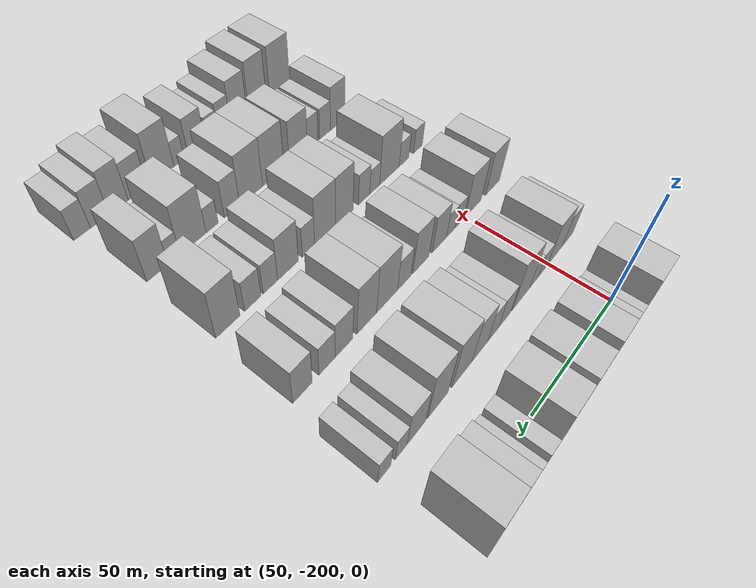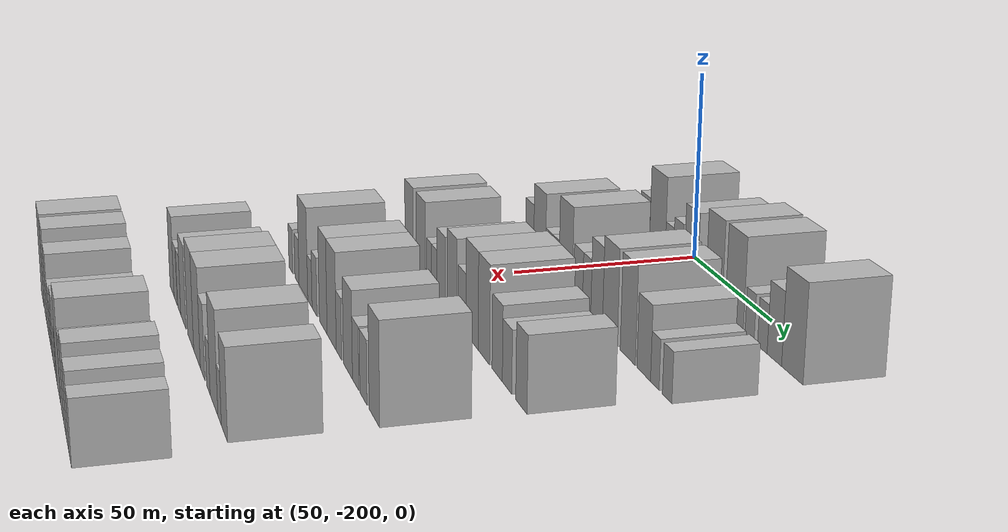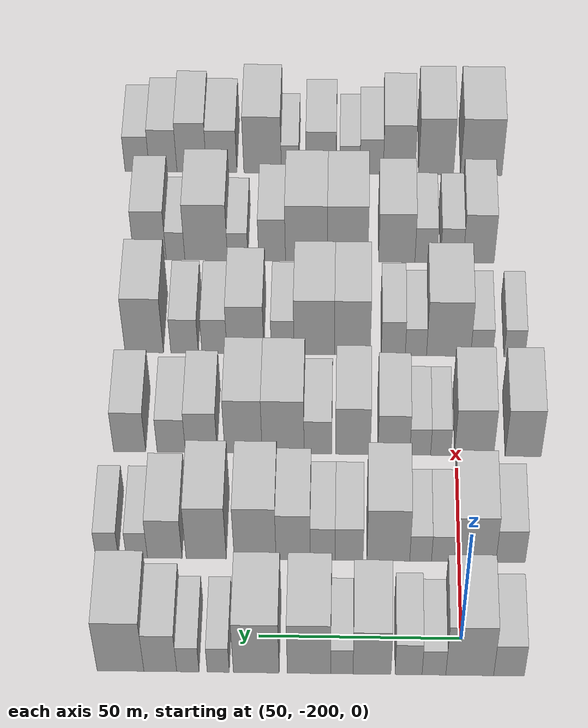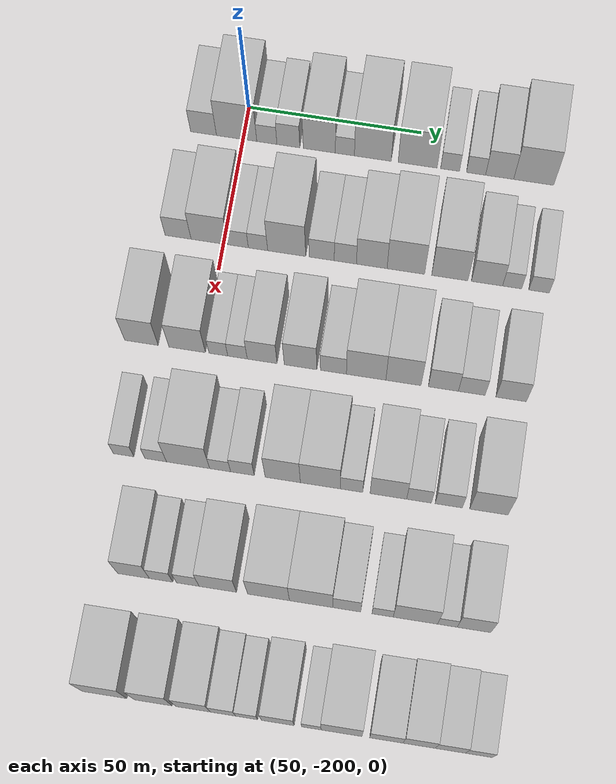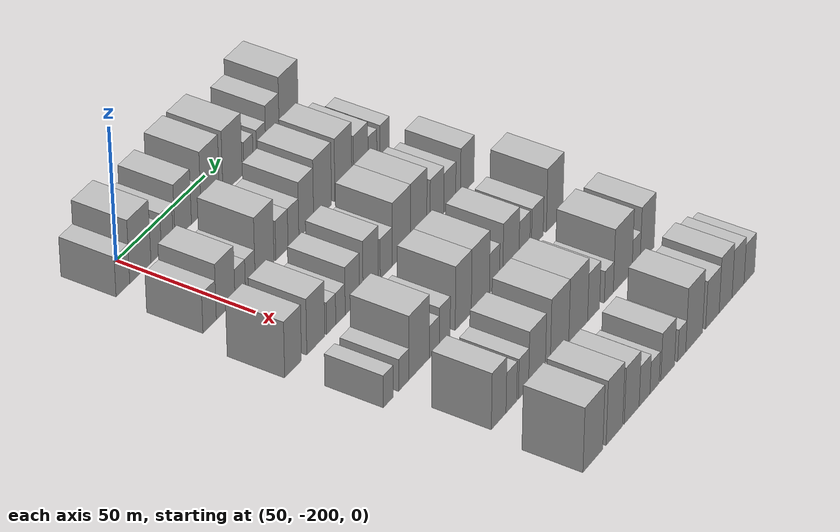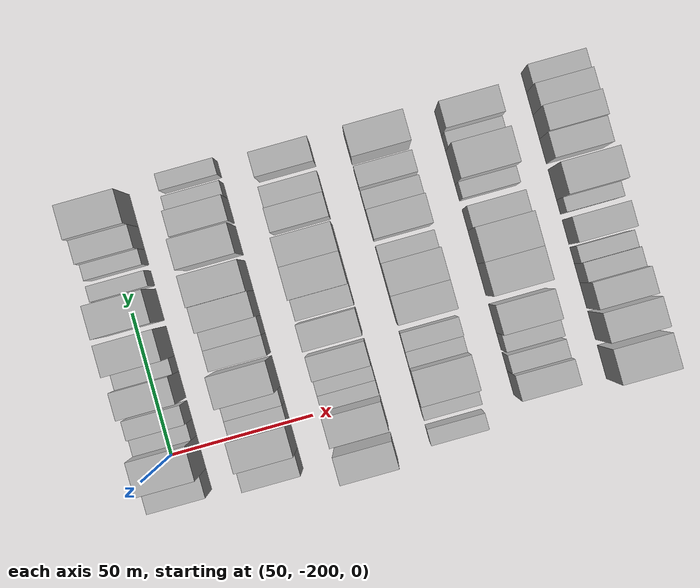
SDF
<sdf version="1.6">
 <world name="default">
  <model name="building_36">
   <static>1</static>
   <pose>50.0000 -211.4095 0 0.000000 0.000000 0.000000</pose>
   <link name="link">
    <pose>0 0 7.50 0 0 0</pose>
    <collision name="collision"><geometry><box><size>20.0000 7.4997 15.0000</size></box></geometry></collision>
    <visual name="visual">
     <cast_shadows>0</cast_shadows>
     <geometry><box><size>20.0000 7.4997 15.0000</size></box></geometry>
     <material>
      <script>
       <uri>model://HANNAS_wall/materials/scripts</uri>
       <uri>model://HANNAS_wall/materials/textures</uri>
       <name>vrc/HANNAS_wall</name>
      </script>
     </material>
    </visual>
   </link>
  </model>
  <model name="building_37">
   <static>1</static>
   <pose>50.0000 -201.8134 0 0.000000 0.000000 0.000000</pose>
   <link name="link">
    <pose>0 0 12.00 0 0 0</pose>
    <collision name="collision"><geometry><box><size>20.0000 11.6925 24.0000</size></box></geometry></collision>
    <visual name="visual">
     <cast_shadows>0</cast_shadows>
     <geometry><box><size>20.0000 11.6925 24.0000</size></box></geometry>
     <material>
      <script>
       <uri>model://HANNAS_wall/materials/scripts</uri>
       <uri>model://HANNAS_wall/materials/textures</uri>
       <name>vrc/HANNAS_wall</name>
      </script>
     </material>
    </visual>
   </link>
  </model>
  <model name="building_38">
   <static>1</static>
   <pose>50.0000 -193.0613 0 0.000000 0.000000 0.000000</pose>
   <link name="link">
    <pose>0 0 6.00 0 0 0</pose>
    <collision name="collision"><geometry><box><size>20.0000 5.8116 12.0000</size></box></geometry></collision>
    <visual name="visual">
     <cast_shadows>0</cast_shadows>
     <geometry><box><size>20.0000 5.8116 12.0000</size></box></geometry>
     <material>
      <script>
       <uri>model://HANNAS_wall/materials/scripts</uri>
       <uri>model://HANNAS_wall/materials/textures</uri>
       <name>vrc/HANNAS_wall</name>
      </script>
     </material>
    </visual>
   </link>
  </model>
  <model name="building_39">
   <static>1</static>
   <pose>50.0000 -186.8491 0 0.000000 0.000000 0.000000</pose>
   <link name="link">
    <pose>0 0 7.50 0 0 0</pose>
    <collision name="collision"><geometry><box><size>20.0000 6.6129 15.0000</size></box></geometry></collision>
    <visual name="visual">
     <cast_shadows>0</cast_shadows>
     <geometry><box><size>20.0000 6.6129 15.0000</size></box></geometry>
     <material>
      <script>
       <uri>model://HANNAS_wall/materials/scripts</uri>
       <uri>model://HANNAS_wall/materials/textures</uri>
       <name>vrc/HANNAS_wall</name>
      </script>
     </material>
    </visual>
   </link>
  </model>
  <model name="building_40">
   <static>1</static>
   <pose>50.0000 -177.8994 0 0.000000 0.000000 0.000000</pose>
   <link name="link">
    <pose>0 0 10.50 0 0 0</pose>
    <collision name="collision"><geometry><box><size>20.0000 9.2864 21.0000</size></box></geometry></collision>
    <visual name="visual">
     <cast_shadows>0</cast_shadows>
     <geometry><box><size>20.0000 9.2864 21.0000</size></box></geometry>
     <material>
      <script>
       <uri>model://HANNAS_wall/materials/scripts</uri>
       <uri>model://HANNAS_wall/materials/textures</uri>
       <name>vrc/HANNAS_wall</name>
      </script>
     </material>
    </visual>
   </link>
  </model>
  <model name="building_41">
   <static>1</static>
   <pose>50.0000 -170.5214 0 0.000000 0.000000 0.000000</pose>
   <link name="link">
    <pose>0 0 6.00 0 0 0</pose>
    <collision name="collision"><geometry><box><size>20.0000 5.4694 12.0000</size></box></geometry></collision>
    <visual name="visual">
     <cast_shadows>0</cast_shadows>
     <geometry><box><size>20.0000 5.4694 12.0000</size></box></geometry>
     <material>
      <script>
       <uri>model://HANNAS_wall/materials/scripts</uri>
       <uri>model://HANNAS_wall/materials/textures</uri>
       <name>vrc/HANNAS_wall</name>
      </script>
     </material>
    </visual>
   </link>
  </model>
  <model name="building_42">
   <static>1</static>
   <pose>50.0000 -162.4964 0 0.000000 0.000000 0.000000</pose>
   <link name="link">
    <pose>0 0 12.00 0 0 0</pose>
    <collision name="collision"><geometry><box><size>20.0000 10.5806 24.0000</size></box></geometry></collision>
    <visual name="visual">
     <cast_shadows>0</cast_shadows>
     <geometry><box><size>20.0000 10.5806 24.0000</size></box></geometry>
     <material>
      <script>
       <uri>model://HANNAS_wall/materials/scripts</uri>
       <uri>model://HANNAS_wall/materials/textures</uri>
       <name>vrc/HANNAS_wall</name>
      </script>
     </material>
    </visual>
   </link>
  </model>
  <model name="building_43">
   <static>1</static>
   <pose>50.0000 -149.6053 0 0.000000 0.000000 0.000000</pose>
   <link name="link">
    <pose>0 0 12.00 0 0 0</pose>
    <collision name="collision"><geometry><box><size>20.0000 11.2016 24.0000</size></box></geometry></collision>
    <visual name="visual">
     <cast_shadows>0</cast_shadows>
     <geometry><box><size>20.0000 11.2016 24.0000</size></box></geometry>
     <material>
      <script>
       <uri>model://HANNAS_wall/materials/scripts</uri>
       <uri>model://HANNAS_wall/materials/textures</uri>
       <name>vrc/HANNAS_wall</name>
      </script>
     </material>
    </visual>
   </link>
  </model>
  <model name="building_44">
   <static>1</static>
   <pose>50.0000 -140.2981 0 0.000000 0.000000 0.000000</pose>
   <link name="link">
    <pose>0 0 6.00 0 0 0</pose>
    <collision name="collision"><geometry><box><size>20.0000 5.4127 12.0000</size></box></geometry></collision>
    <visual name="visual">
     <cast_shadows>0</cast_shadows>
     <geometry><box><size>20.0000 5.4127 12.0000</size></box></geometry>
     <material>
      <script>
       <uri>model://HANNAS_wall/materials/scripts</uri>
       <uri>model://HANNAS_wall/materials/textures</uri>
       <name>vrc/HANNAS_wall</name>
      </script>
     </material>
    </visual>
   </link>
  </model>
  <model name="building_45">
   <static>1</static>
   <pose>50.0000 -132.8563 0 0.000000 0.000000 0.000000</pose>
   <link name="link">
    <pose>0 0 6.00 0 0 0</pose>
    <collision name="collision"><geometry><box><size>20.0000 5.4709 12.0000</size></box></geometry></collision>
    <visual name="visual">
     <cast_shadows>0</cast_shadows>
     <geometry><box><size>20.0000 5.4709 12.0000</size></box></geometry>
     <material>
      <script>
       <uri>model://HANNAS_wall/materials/scripts</uri>
       <uri>model://HANNAS_wall/materials/textures</uri>
       <name>vrc/HANNAS_wall</name>
      </script>
     </material>
    </visual>
   </link>
  </model>
  <model name="building_46">
   <static>1</static>
   <pose>50.0000 -126.0990 0 0.000000 0.000000 0.000000</pose>
   <link name="link">
    <pose>0 0 9.00 0 0 0</pose>
    <collision name="collision"><geometry><box><size>20.0000 8.0437 18.0000</size></box></geometry></collision>
    <visual name="visual">
     <cast_shadows>0</cast_shadows>
     <geometry><box><size>20.0000 8.0437 18.0000</size></box></geometry>
     <material>
      <script>
       <uri>model://HANNAS_wall/materials/scripts</uri>
       <uri>model://HANNAS_wall/materials/textures</uri>
       <name>vrc/HANNAS_wall</name>
      </script>
     </material>
    </visual>
   </link>
  </model>
  <model name="building_47">
   <static>1</static>
   <pose>50.0000 -116.3483 0 0.000000 0.000000 0.000000</pose>
   <link name="link">
    <pose>0 0 12.00 0 0 0</pose>
    <collision name="collision"><geometry><box><size>20.0000 11.4578 24.0000</size></box></geometry></collision>
    <visual name="visual">
     <cast_shadows>0</cast_shadows>
     <geometry><box><size>20.0000 11.4578 24.0000</size></box></geometry>
     <material>
      <script>
       <uri>model://HANNAS_wall/materials/scripts</uri>
       <uri>model://HANNAS_wall/materials/textures</uri>
       <name>vrc/HANNAS_wall</name>
      </script>
     </material>
    </visual>
   </link>
  </model>
  <model name="building_151">
   <static>1</static>
   <pose>82.0000 -212.9503 0 0.000000 0.000000 0.000000</pose>
   <link name="link">
    <pose>0 0 7.50 0 0 0</pose>
    <collision name="collision"><geometry><box><size>20.0000 7.4075 15.0000</size></box></geometry></collision>
    <visual name="visual">
     <cast_shadows>0</cast_shadows>
     <geometry><box><size>20.0000 7.4075 15.0000</size></box></geometry>
     <material>
      <script>
       <uri>model://HANNAS_wall/materials/scripts</uri>
       <uri>model://HANNAS_wall/materials/textures</uri>
       <name>vrc/HANNAS_wall</name>
      </script>
     </material>
    </visual>
   </link>
  </model>
  <model name="building_152">
   <static>1</static>
   <pose>82.0000 -204.0223 0 0.000000 0.000000 0.000000</pose>
   <link name="link">
    <pose>0 0 10.50 0 0 0</pose>
    <collision name="collision"><geometry><box><size>20.0000 10.4486 21.0000</size></box></geometry></collision>
    <visual name="visual">
     <cast_shadows>0</cast_shadows>
     <geometry><box><size>20.0000 10.4486 21.0000</size></box></geometry>
     <material>
      <script>
       <uri>model://HANNAS_wall/materials/scripts</uri>
       <uri>model://HANNAS_wall/materials/textures</uri>
       <name>vrc/HANNAS_wall</name>
      </script>
     </material>
    </visual>
   </link>
  </model>
  <model name="building_153">
   <static>1</static>
   <pose>82.0000 -195.8645 0 0.000000 0.000000 0.000000</pose>
   <link name="link">
    <pose>0 0 6.00 0 0 0</pose>
    <collision name="collision"><geometry><box><size>20.0000 5.8670 12.0000</size></box></geometry></collision>
    <visual name="visual">
     <cast_shadows>0</cast_shadows>
     <geometry><box><size>20.0000 5.8670 12.0000</size></box></geometry>
     <material>
      <script>
       <uri>model://HANNAS_wall/materials/scripts</uri>
       <uri>model://HANNAS_wall/materials/textures</uri>
       <name>vrc/HANNAS_wall</name>
      </script>
     </material>
    </visual>
   </link>
  </model>
  <model name="building_154">
   <static>1</static>
   <pose>82.0000 -190.1782 0 0.000000 0.000000 0.000000</pose>
   <link name="link">
    <pose>0 0 6.00 0 0 0</pose>
    <collision name="collision"><geometry><box><size>20.0000 5.5055 12.0000</size></box></geometry></collision>
    <visual name="visual">
     <cast_shadows>0</cast_shadows>
     <geometry><box><size>20.0000 5.5055 12.0000</size></box></geometry>
     <material>
      <script>
       <uri>model://HANNAS_wall/materials/scripts</uri>
       <uri>model://HANNAS_wall/materials/textures</uri>
       <name>vrc/HANNAS_wall</name>
      </script>
     </material>
    </visual>
   </link>
  </model>
  <model name="building_155">
   <static>1</static>
   <pose>82.0000 -182.0182 0 0.000000 0.000000 0.000000</pose>
   <link name="link">
    <pose>0 0 12.00 0 0 0</pose>
    <collision name="collision"><geometry><box><size>20.0000 10.8144 24.0000</size></box></geometry></collision>
    <visual name="visual">
     <cast_shadows>0</cast_shadows>
     <geometry><box><size>20.0000 10.8144 24.0000</size></box></geometry>
     <material>
      <script>
       <uri>model://HANNAS_wall/materials/scripts</uri>
       <uri>model://HANNAS_wall/materials/textures</uri>
       <name>vrc/HANNAS_wall</name>
      </script>
     </material>
    </visual>
   </link>
  </model>
  <model name="building_156">
   <static>1</static>
   <pose>82.0000 -172.0646 0 0.000000 0.000000 0.000000</pose>
   <link name="link">
    <pose>0 0 7.50 0 0 0</pose>
    <collision name="collision"><geometry><box><size>20.0000 7.0930 15.0000</size></box></geometry></collision>
    <visual name="visual">
     <cast_shadows>0</cast_shadows>
     <geometry><box><size>20.0000 7.0930 15.0000</size></box></geometry>
     <material>
      <script>
       <uri>model://HANNAS_wall/materials/scripts</uri>
       <uri>model://HANNAS_wall/materials/textures</uri>
       <name>vrc/HANNAS_wall</name>
      </script>
     </material>
    </visual>
   </link>
  </model>
  <model name="building_157">
   <static>1</static>
   <pose>82.0000 -165.3801 0 0.000000 0.000000 0.000000</pose>
   <link name="link">
    <pose>0 0 7.50 0 0 0</pose>
    <collision name="collision"><geometry><box><size>20.0000 6.2759 15.0000</size></box></geometry></collision>
    <visual name="visual">
     <cast_shadows>0</cast_shadows>
     <geometry><box><size>20.0000 6.2759 15.0000</size></box></geometry>
     <material>
      <script>
       <uri>model://HANNAS_wall/materials/scripts</uri>
       <uri>model://HANNAS_wall/materials/textures</uri>
       <name>vrc/HANNAS_wall</name>
      </script>
     </material>
    </visual>
   </link>
  </model>
  <model name="building_158">
   <static>1</static>
   <pose>82.0000 -157.9136 0 0.000000 0.000000 0.000000</pose>
   <link name="link">
    <pose>0 0 10.50 0 0 0</pose>
    <collision name="collision"><geometry><box><size>20.0000 8.6572 21.0000</size></box></geometry></collision>
    <visual name="visual">
     <cast_shadows>0</cast_shadows>
     <geometry><box><size>20.0000 8.6572 21.0000</size></box></geometry>
     <material>
      <script>
       <uri>model://HANNAS_wall/materials/scripts</uri>
       <uri>model://HANNAS_wall/materials/textures</uri>
       <name>vrc/HANNAS_wall</name>
      </script>
     </material>
    </visual>
   </link>
  </model>
  <model name="building_159">
   <static>1</static>
   <pose>82.0000 -148.2893 0 0.000000 0.000000 0.000000</pose>
   <link name="link">
    <pose>0 0 12.00 0 0 0</pose>
    <collision name="collision"><geometry><box><size>20.0000 10.5914 24.0000</size></box></geometry></collision>
    <visual name="visual">
     <cast_shadows>0</cast_shadows>
     <geometry><box><size>20.0000 10.5914 24.0000</size></box></geometry>
     <material>
      <script>
       <uri>model://HANNAS_wall/materials/scripts</uri>
       <uri>model://HANNAS_wall/materials/textures</uri>
       <name>vrc/HANNAS_wall</name>
      </script>
     </material>
    </visual>
   </link>
  </model>
  <model name="building_160">
   <static>1</static>
   <pose>82.0000 -135.8942 0 0.000000 0.000000 0.000000</pose>
   <link name="link">
    <pose>0 0 12.00 0 0 0</pose>
    <collision name="collision"><geometry><box><size>20.0000 10.1988 24.0000</size></box></geometry></collision>
    <visual name="visual">
     <cast_shadows>0</cast_shadows>
     <geometry><box><size>20.0000 10.1988 24.0000</size></box></geometry>
     <material>
      <script>
       <uri>model://HANNAS_wall/materials/scripts</uri>
       <uri>model://HANNAS_wall/materials/textures</uri>
       <name>vrc/HANNAS_wall</name>
      </script>
     </material>
    </visual>
   </link>
  </model>
  <model name="building_161">
   <static>1</static>
   <pose>82.0000 -125.4006 0 0.000000 0.000000 0.000000</pose>
   <link name="link">
    <pose>0 0 9.00 0 0 0</pose>
    <collision name="collision"><geometry><box><size>20.0000 8.7882 18.0000</size></box></geometry></collision>
    <visual name="visual">
     <cast_shadows>0</cast_shadows>
     <geometry><box><size>20.0000 8.7882 18.0000</size></box></geometry>
     <material>
      <script>
       <uri>model://HANNAS_wall/materials/scripts</uri>
       <uri>model://HANNAS_wall/materials/textures</uri>
       <name>vrc/HANNAS_wall</name>
      </script>
     </material>
    </visual>
   </link>
  </model>
  <model name="building_162">
   <static>1</static>
   <pose>82.0000 -118.3211 0 0.000000 0.000000 0.000000</pose>
   <link name="link">
    <pose>0 0 6.00 0 0 0</pose>
    <collision name="collision"><geometry><box><size>20.0000 5.3708 12.0000</size></box></geometry></collision>
    <visual name="visual">
     <cast_shadows>0</cast_shadows>
     <geometry><box><size>20.0000 5.3708 12.0000</size></box></geometry>
     <material>
      <script>
       <uri>model://HANNAS_wall/materials/scripts</uri>
       <uri>model://HANNAS_wall/materials/textures</uri>
       <name>vrc/HANNAS_wall</name>
      </script>
     </material>
    </visual>
   </link>
  </model>
  <model name="building_163">
   <static>1</static>
   <pose>82.0000 -110.7547 0 0.000000 0.000000 0.000000</pose>
   <link name="link">
    <pose>0 0 6.00 0 0 0</pose>
    <collision name="collision"><geometry><box><size>20.0000 5.7620 12.0000</size></box></geometry></collision>
    <visual name="visual">
     <cast_shadows>0</cast_shadows>
     <geometry><box><size>20.0000 5.7620 12.0000</size></box></geometry>
     <material>
      <script>
       <uri>model://HANNAS_wall/materials/scripts</uri>
       <uri>model://HANNAS_wall/materials/textures</uri>
       <name>vrc/HANNAS_wall</name>
      </script>
     </material>
    </visual>
   </link>
  </model>
  <model name="building_274">
   <static>1</static>
   <pose>114.0000 -217.3961 0 0.000000 0.000000 0.000000</pose>
   <link name="link">
    <pose>0 0 10.50 0 0 0</pose>
    <collision name="collision"><geometry><box><size>20.0000 9.4086 21.0000</size></box></geometry></collision>
    <visual name="visual">
     <cast_shadows>0</cast_shadows>
     <geometry><box><size>20.0000 9.4086 21.0000</size></box></geometry>
     <material>
      <script>
       <uri>model://HANNAS_wall/materials/scripts</uri>
       <uri>model://HANNAS_wall/materials/textures</uri>
       <name>vrc/HANNAS_wall</name>
      </script>
     </material>
    </visual>
   </link>
  </model>
  <model name="building_275">
   <static>1</static>
   <pose>114.0000 -204.5682 0 0.000000 0.000000 0.000000</pose>
   <link name="link">
    <pose>0 0 10.50 0 0 0</pose>
    <collision name="collision"><geometry><box><size>20.0000 10.2472 21.0000</size></box></geometry></collision>
    <visual name="visual">
     <cast_shadows>0</cast_shadows>
     <geometry><box><size>20.0000 10.2472 21.0000</size></box></geometry>
     <material>
      <script>
       <uri>model://HANNAS_wall/materials/scripts</uri>
       <uri>model://HANNAS_wall/materials/textures</uri>
       <name>vrc/HANNAS_wall</name>
      </script>
     </material>
    </visual>
   </link>
  </model>
  <model name="building_276">
   <static>1</static>
   <pose>114.0000 -195.8156 0 0.000000 0.000000 0.000000</pose>
   <link name="link">
    <pose>0 0 6.00 0 0 0</pose>
    <collision name="collision"><geometry><box><size>20.0000 5.2579 12.0000</size></box></geometry></collision>
    <visual name="visual">
     <cast_shadows>0</cast_shadows>
     <geometry><box><size>20.0000 5.2579 12.0000</size></box></geometry>
     <material>
      <script>
       <uri>model://HANNAS_wall/materials/scripts</uri>
       <uri>model://HANNAS_wall/materials/textures</uri>
       <name>vrc/HANNAS_wall</name>
      </script>
     </material>
    </visual>
   </link>
  </model>
  <model name="building_277">
   <static>1</static>
   <pose>114.0000 -190.4619 0 0.000000 0.000000 0.000000</pose>
   <link name="link">
    <pose>0 0 6.00 0 0 0</pose>
    <collision name="collision"><geometry><box><size>20.0000 5.4493 12.0000</size></box></geometry></collision>
    <visual name="visual">
     <cast_shadows>0</cast_shadows>
     <geometry><box><size>20.0000 5.4493 12.0000</size></box></geometry>
     <material>
      <script>
       <uri>model://HANNAS_wall/materials/scripts</uri>
       <uri>model://HANNAS_wall/materials/textures</uri>
       <name>vrc/HANNAS_wall</name>
      </script>
     </material>
    </visual>
   </link>
  </model>
  <model name="building_278">
   <static>1</static>
   <pose>114.0000 -183.5684 0 0.000000 0.000000 0.000000</pose>
   <link name="link">
    <pose>0 0 9.00 0 0 0</pose>
    <collision name="collision"><geometry><box><size>20.0000 8.3378 18.0000</size></box></geometry></collision>
    <visual name="visual">
     <cast_shadows>0</cast_shadows>
     <geometry><box><size>20.0000 8.3378 18.0000</size></box></geometry>
     <material>
      <script>
       <uri>model://HANNAS_wall/materials/scripts</uri>
       <uri>model://HANNAS_wall/materials/textures</uri>
       <name>vrc/HANNAS_wall</name>
      </script>
     </material>
    </visual>
   </link>
  </model>
  <model name="building_279">
   <static>1</static>
   <pose>114.0000 -172.8526 0 0.000000 0.000000 0.000000</pose>
   <link name="link">
    <pose>0 0 10.50 0 0 0</pose>
    <collision name="collision"><geometry><box><size>20.0000 9.0937 21.0000</size></box></geometry></collision>
    <visual name="visual">
     <cast_shadows>0</cast_shadows>
     <geometry><box><size>20.0000 9.0937 21.0000</size></box></geometry>
     <material>
      <script>
       <uri>model://HANNAS_wall/materials/scripts</uri>
       <uri>model://HANNAS_wall/materials/textures</uri>
       <name>vrc/HANNAS_wall</name>
      </script>
     </material>
    </visual>
   </link>
  </model>
  <model name="building_280">
   <static>1</static>
   <pose>114.0000 -163.6942 0 0.000000 0.000000 0.000000</pose>
   <link name="link">
    <pose>0 0 7.50 0 0 0</pose>
    <collision name="collision"><geometry><box><size>20.0000 7.2231 15.0000</size></box></geometry></collision>
    <visual name="visual">
     <cast_shadows>0</cast_shadows>
     <geometry><box><size>20.0000 7.2231 15.0000</size></box></geometry>
     <material>
      <script>
       <uri>model://HANNAS_wall/materials/scripts</uri>
       <uri>model://HANNAS_wall/materials/textures</uri>
       <name>vrc/HANNAS_wall</name>
      </script>
     </material>
    </visual>
   </link>
  </model>
  <model name="building_281">
   <static>1</static>
   <pose>114.0000 -154.5958 0 0.000000 0.000000 0.000000</pose>
   <link name="link">
    <pose>0 0 12.00 0 0 0</pose>
    <collision name="collision"><geometry><box><size>20.0000 10.9738 24.0000</size></box></geometry></collision>
    <visual name="visual">
     <cast_shadows>0</cast_shadows>
     <geometry><box><size>20.0000 10.9738 24.0000</size></box></geometry>
     <material>
      <script>
       <uri>model://HANNAS_wall/materials/scripts</uri>
       <uri>model://HANNAS_wall/materials/textures</uri>
       <name>vrc/HANNAS_wall</name>
      </script>
     </material>
    </visual>
   </link>
  </model>
  <model name="building_282">
   <static>1</static>
   <pose>114.0000 -144.2186 0 0.000000 0.000000 0.000000</pose>
   <link name="link">
    <pose>0 0 12.00 0 0 0</pose>
    <collision name="collision"><geometry><box><size>20.0000 9.7807 24.0000</size></box></geometry></collision>
    <visual name="visual">
     <cast_shadows>0</cast_shadows>
     <geometry><box><size>20.0000 9.7807 24.0000</size></box></geometry>
     <material>
      <script>
       <uri>model://HANNAS_wall/materials/scripts</uri>
       <uri>model://HANNAS_wall/materials/textures</uri>
       <name>vrc/HANNAS_wall</name>
      </script>
     </material>
    </visual>
   </link>
  </model>
  <model name="building_283">
   <static>1</static>
   <pose>114.0000 -133.1654 0 0.000000 0.000000 0.000000</pose>
   <link name="link">
    <pose>0 0 9.00 0 0 0</pose>
    <collision name="collision"><geometry><box><size>20.0000 8.3256 18.0000</size></box></geometry></collision>
    <visual name="visual">
     <cast_shadows>0</cast_shadows>
     <geometry><box><size>20.0000 8.3256 18.0000</size></box></geometry>
     <material>
      <script>
       <uri>model://HANNAS_wall/materials/scripts</uri>
       <uri>model://HANNAS_wall/materials/textures</uri>
       <name>vrc/HANNAS_wall</name>
      </script>
     </material>
    </visual>
   </link>
  </model>
  <model name="building_284">
   <static>1</static>
   <pose>114.0000 -125.3025 0 0.000000 0.000000 0.000000</pose>
   <link name="link">
    <pose>0 0 7.50 0 0 0</pose>
    <collision name="collision"><geometry><box><size>20.0000 7.4002 15.0000</size></box></geometry></collision>
    <visual name="visual">
     <cast_shadows>0</cast_shadows>
     <geometry><box><size>20.0000 7.4002 15.0000</size></box></geometry>
     <material>
      <script>
       <uri>model://HANNAS_wall/materials/scripts</uri>
       <uri>model://HANNAS_wall/materials/textures</uri>
       <name>vrc/HANNAS_wall</name>
      </script>
     </material>
    </visual>
   </link>
  </model>
  <model name="building_285">
   <static>1</static>
   <pose>114.0000 -114.3915 0 0.000000 0.000000 0.000000</pose>
   <link name="link">
    <pose>0 0 9.00 0 0 0</pose>
    <collision name="collision"><geometry><box><size>20.0000 8.4218 18.0000</size></box></geometry></collision>
    <visual name="visual">
     <cast_shadows>0</cast_shadows>
     <geometry><box><size>20.0000 8.4218 18.0000</size></box></geometry>
     <material>
      <script>
       <uri>model://HANNAS_wall/materials/scripts</uri>
       <uri>model://HANNAS_wall/materials/textures</uri>
       <name>vrc/HANNAS_wall</name>
      </script>
     </material>
    </visual>
   </link>
  </model>
  <model name="building_395">
   <static>1</static>
   <pose>146.0000 -216.2982 0 0.000000 0.000000 0.000000</pose>
   <link name="link">
    <pose>0 0 6.00 0 0 0</pose>
    <collision name="collision"><geometry><box><size>20.0000 5.6834 12.0000</size></box></geometry></collision>
    <visual name="visual">
     <cast_shadows>0</cast_shadows>
     <geometry><box><size>20.0000 5.6834 12.0000</size></box></geometry>
     <material>
      <script>
       <uri>model://HANNAS_wall/materials/scripts</uri>
       <uri>model://HANNAS_wall/materials/textures</uri>
       <name>vrc/HANNAS_wall</name>
      </script>
     </material>
    </visual>
   </link>
  </model>
  <model name="building_396">
   <static>1</static>
   <pose>146.0000 -207.4689 0 0.000000 0.000000 0.000000</pose>
   <link name="link">
    <pose>0 0 6.00 0 0 0</pose>
    <collision name="collision"><geometry><box><size>20.0000 5.9752 12.0000</size></box></geometry></collision>
    <visual name="visual">
     <cast_shadows>0</cast_shadows>
     <geometry><box><size>20.0000 5.9752 12.0000</size></box></geometry>
     <material>
      <script>
       <uri>model://HANNAS_wall/materials/scripts</uri>
       <uri>model://HANNAS_wall/materials/textures</uri>
       <name>vrc/HANNAS_wall</name>
      </script>
     </material>
    </visual>
   </link>
  </model>
  <model name="building_397">
   <static>1</static>
   <pose>146.0000 -198.5194 0 0.000000 0.000000 0.000000</pose>
   <link name="link">
    <pose>0 0 12.00 0 0 0</pose>
    <collision name="collision"><geometry><box><size>20.0000 11.9237 24.0000</size></box></geometry></collision>
    <visual name="visual">
     <cast_shadows>0</cast_shadows>
     <geometry><box><size>20.0000 11.9237 24.0000</size></box></geometry>
     <material>
      <script>
       <uri>model://HANNAS_wall/materials/scripts</uri>
       <uri>model://HANNAS_wall/materials/textures</uri>
       <name>vrc/HANNAS_wall</name>
      </script>
     </material>
    </visual>
   </link>
  </model>
  <model name="building_398">
   <static>1</static>
   <pose>146.0000 -189.6825 0 0.000000 0.000000 0.000000</pose>
   <link name="link">
    <pose>0 0 6.00 0 0 0</pose>
    <collision name="collision"><geometry><box><size>20.0000 5.7501 12.0000</size></box></geometry></collision>
    <visual name="visual">
     <cast_shadows>0</cast_shadows>
     <geometry><box><size>20.0000 5.7501 12.0000</size></box></geometry>
     <material>
      <script>
       <uri>model://HANNAS_wall/materials/scripts</uri>
       <uri>model://HANNAS_wall/materials/textures</uri>
       <name>vrc/HANNAS_wall</name>
      </script>
     </material>
    </visual>
   </link>
  </model>
  <model name="building_399">
   <static>1</static>
   <pose>146.0000 -183.5676 0 0.000000 0.000000 0.000000</pose>
   <link name="link">
    <pose>0 0 7.50 0 0 0</pose>
    <collision name="collision"><geometry><box><size>20.0000 6.4797 15.0000</size></box></geometry></collision>
    <visual name="visual">
     <cast_shadows>0</cast_shadows>
     <geometry><box><size>20.0000 6.4797 15.0000</size></box></geometry>
     <material>
      <script>
       <uri>model://HANNAS_wall/materials/scripts</uri>
       <uri>model://HANNAS_wall/materials/textures</uri>
       <name>vrc/HANNAS_wall</name>
      </script>
     </material>
    </visual>
   </link>
  </model>
  <model name="building_400">
   <static>1</static>
   <pose>146.0000 -172.4982 0 0.000000 0.000000 0.000000</pose>
   <link name="link">
    <pose>0 0 12.00 0 0 0</pose>
    <collision name="collision"><geometry><box><size>20.0000 9.6591 24.0000</size></box></geometry></collision>
    <visual name="visual">
     <cast_shadows>0</cast_shadows>
     <geometry><box><size>20.0000 9.6591 24.0000</size></box></geometry>
     <material>
      <script>
       <uri>model://HANNAS_wall/materials/scripts</uri>
       <uri>model://HANNAS_wall/materials/textures</uri>
       <name>vrc/HANNAS_wall</name>
      </script>
     </material>
    </visual>
   </link>
  </model>
  <model name="building_401">
   <static>1</static>
   <pose>146.0000 -162.2149 0 0.000000 0.000000 0.000000</pose>
   <link name="link">
    <pose>0 0 12.00 0 0 0</pose>
    <collision name="collision"><geometry><box><size>20.0000 10.9075 24.0000</size></box></geometry></collision>
    <visual name="visual">
     <cast_shadows>0</cast_shadows>
     <geometry><box><size>20.0000 10.9075 24.0000</size></box></geometry>
     <material>
      <script>
       <uri>model://HANNAS_wall/materials/scripts</uri>
       <uri>model://HANNAS_wall/materials/textures</uri>
       <name>vrc/HANNAS_wall</name>
      </script>
     </material>
    </visual>
   </link>
  </model>
  <model name="building_402">
   <static>1</static>
   <pose>146.0000 -153.6834 0 0.000000 0.000000 0.000000</pose>
   <link name="link">
    <pose>0 0 7.50 0 0 0</pose>
    <collision name="collision"><geometry><box><size>20.0000 6.1556 15.0000</size></box></geometry></collision>
    <visual name="visual">
     <cast_shadows>0</cast_shadows>
     <geometry><box><size>20.0000 6.1556 15.0000</size></box></geometry>
     <material>
      <script>
       <uri>model://HANNAS_wall/materials/scripts</uri>
       <uri>model://HANNAS_wall/materials/textures</uri>
       <name>vrc/HANNAS_wall</name>
      </script>
     </material>
    </visual>
   </link>
  </model>
  <model name="building_403">
   <static>1</static>
   <pose>146.0000 -143.6193 0 0.000000 0.000000 0.000000</pose>
   <link name="link">
    <pose>0 0 10.50 0 0 0</pose>
    <collision name="collision"><geometry><box><size>20.0000 9.9726 21.0000</size></box></geometry></collision>
    <visual name="visual">
     <cast_shadows>0</cast_shadows>
     <geometry><box><size>20.0000 9.9726 21.0000</size></box></geometry>
     <material>
      <script>
       <uri>model://HANNAS_wall/materials/scripts</uri>
       <uri>model://HANNAS_wall/materials/textures</uri>
       <name>vrc/HANNAS_wall</name>
      </script>
     </material>
    </visual>
   </link>
  </model>
  <model name="building_404">
   <static>1</static>
   <pose>146.0000 -135.2486 0 0.000000 0.000000 0.000000</pose>
   <link name="link">
    <pose>0 0 7.50 0 0 0</pose>
    <collision name="collision"><geometry><box><size>20.0000 6.7687 15.0000</size></box></geometry></collision>
    <visual name="visual">
     <cast_shadows>0</cast_shadows>
     <geometry><box><size>20.0000 6.7687 15.0000</size></box></geometry>
     <material>
      <script>
       <uri>model://HANNAS_wall/materials/scripts</uri>
       <uri>model://HANNAS_wall/materials/textures</uri>
       <name>vrc/HANNAS_wall</name>
      </script>
     </material>
    </visual>
   </link>
  </model>
  <model name="building_405">
   <static>1</static>
   <pose>146.0000 -127.1512 0 0.000000 0.000000 0.000000</pose>
   <link name="link">
    <pose>0 0 7.50 0 0 0</pose>
    <collision name="collision"><geometry><box><size>20.0000 7.4262 15.0000</size></box></geometry></collision>
    <visual name="visual">
     <cast_shadows>0</cast_shadows>
     <geometry><box><size>20.0000 7.4262 15.0000</size></box></geometry>
     <material>
      <script>
       <uri>model://HANNAS_wall/materials/scripts</uri>
       <uri>model://HANNAS_wall/materials/textures</uri>
       <name>vrc/HANNAS_wall</name>
      </script>
     </material>
    </visual>
   </link>
  </model>
  <model name="building_406">
   <static>1</static>
   <pose>146.0000 -116.2411 0 0.000000 0.000000 0.000000</pose>
   <link name="link">
    <pose>0 0 12.00 0 0 0</pose>
    <collision name="collision"><geometry><box><size>20.0000 10.3940 24.0000</size></box></geometry></collision>
    <visual name="visual">
     <cast_shadows>0</cast_shadows>
     <geometry><box><size>20.0000 10.3940 24.0000</size></box></geometry>
     <material>
      <script>
       <uri>model://HANNAS_wall/materials/scripts</uri>
       <uri>model://HANNAS_wall/materials/textures</uri>
       <name>vrc/HANNAS_wall</name>
      </script>
     </material>
    </visual>
   </link>
  </model>
  <model name="building_521">
   <static>1</static>
   <pose>178.0000 -207.5041 0 0.000000 0.000000 0.000000</pose>
   <link name="link">
    <pose>0 0 10.50 0 0 0</pose>
    <collision name="collision"><geometry><box><size>20.0000 8.6215 21.0000</size></box></geometry></collision>
    <visual name="visual">
     <cast_shadows>0</cast_shadows>
     <geometry><box><size>20.0000 8.6215 21.0000</size></box></geometry>
     <material>
      <script>
       <uri>model://HANNAS_wall/materials/scripts</uri>
       <uri>model://HANNAS_wall/materials/textures</uri>
       <name>vrc/HANNAS_wall</name>
      </script>
     </material>
    </visual>
   </link>
  </model>
  <model name="building_522">
   <static>1</static>
   <pose>178.0000 -200.0200 0 0.000000 0.000000 0.000000</pose>
   <link name="link">
    <pose>0 0 7.50 0 0 0</pose>
    <collision name="collision"><geometry><box><size>20.0000 6.3466 15.0000</size></box></geometry></collision>
    <visual name="visual">
     <cast_shadows>0</cast_shadows>
     <geometry><box><size>20.0000 6.3466 15.0000</size></box></geometry>
     <material>
      <script>
       <uri>model://HANNAS_wall/materials/scripts</uri>
       <uri>model://HANNAS_wall/materials/textures</uri>
       <name>vrc/HANNAS_wall</name>
      </script>
     </material>
    </visual>
   </link>
  </model>
  <model name="building_523">
   <static>1</static>
   <pose>178.0000 -192.8045 0 0.000000 0.000000 0.000000</pose>
   <link name="link">
    <pose>0 0 7.50 0 0 0</pose>
    <collision name="collision"><geometry><box><size>20.0000 6.0844 15.0000</size></box></geometry></collision>
    <visual name="visual">
     <cast_shadows>0</cast_shadows>
     <geometry><box><size>20.0000 6.0844 15.0000</size></box></geometry>
     <material>
      <script>
       <uri>model://HANNAS_wall/materials/scripts</uri>
       <uri>model://HANNAS_wall/materials/textures</uri>
       <name>vrc/HANNAS_wall</name>
      </script>
     </material>
    </visual>
   </link>
  </model>
  <model name="building_524">
   <static>1</static>
   <pose>178.0000 -184.7007 0 0.000000 0.000000 0.000000</pose>
   <link name="link">
    <pose>0 0 10.50 0 0 0</pose>
    <collision name="collision"><geometry><box><size>20.0000 10.1232 21.0000</size></box></geometry></collision>
    <visual name="visual">
     <cast_shadows>0</cast_shadows>
     <geometry><box><size>20.0000 10.1232 21.0000</size></box></geometry>
     <material>
      <script>
       <uri>model://HANNAS_wall/materials/scripts</uri>
       <uri>model://HANNAS_wall/materials/textures</uri>
       <name>vrc/HANNAS_wall</name>
      </script>
     </material>
    </visual>
   </link>
  </model>
  <model name="building_525">
   <static>1</static>
   <pose>178.0000 -171.0028 0 0.000000 0.000000 0.000000</pose>
   <link name="link">
    <pose>0 0 12.00 0 0 0</pose>
    <collision name="collision"><geometry><box><size>20.0000 11.2724 24.0000</size></box></geometry></collision>
    <visual name="visual">
     <cast_shadows>0</cast_shadows>
     <geometry><box><size>20.0000 11.2724 24.0000</size></box></geometry>
     <material>
      <script>
       <uri>model://HANNAS_wall/materials/scripts</uri>
       <uri>model://HANNAS_wall/materials/textures</uri>
       <name>vrc/HANNAS_wall</name>
      </script>
     </material>
    </visual>
   </link>
  </model>
  <model name="building_526">
   <static>1</static>
   <pose>178.0000 -159.5285 0 0.000000 0.000000 0.000000</pose>
   <link name="link">
    <pose>0 0 12.00 0 0 0</pose>
    <collision name="collision"><geometry><box><size>20.0000 11.6763 24.0000</size></box></geometry></collision>
    <visual name="visual">
     <cast_shadows>0</cast_shadows>
     <geometry><box><size>20.0000 11.6763 24.0000</size></box></geometry>
     <material>
      <script>
       <uri>model://HANNAS_wall/materials/scripts</uri>
       <uri>model://HANNAS_wall/materials/textures</uri>
       <name>vrc/HANNAS_wall</name>
      </script>
     </material>
    </visual>
   </link>
  </model>
  <model name="building_527">
   <static>1</static>
   <pose>178.0000 -149.9509 0 0.000000 0.000000 0.000000</pose>
   <link name="link">
    <pose>0 0 9.00 0 0 0</pose>
    <collision name="collision"><geometry><box><size>20.0000 7.4788 18.0000</size></box></geometry></collision>
    <visual name="visual">
     <cast_shadows>0</cast_shadows>
     <geometry><box><size>20.0000 7.4788 18.0000</size></box></geometry>
     <material>
      <script>
       <uri>model://HANNAS_wall/materials/scripts</uri>
       <uri>model://HANNAS_wall/materials/textures</uri>
       <name>vrc/HANNAS_wall</name>
      </script>
     </material>
    </visual>
   </link>
  </model>
  <model name="building_528">
   <static>1</static>
   <pose>178.0000 -140.3699 0 0.000000 0.000000 0.000000</pose>
   <link name="link">
    <pose>0 0 6.00 0 0 0</pose>
    <collision name="collision"><geometry><box><size>20.0000 5.6833 12.0000</size></box></geometry></collision>
    <visual name="visual">
     <cast_shadows>0</cast_shadows>
     <geometry><box><size>20.0000 5.6833 12.0000</size></box></geometry>
     <material>
      <script>
       <uri>model://HANNAS_wall/materials/scripts</uri>
       <uri>model://HANNAS_wall/materials/textures</uri>
       <name>vrc/HANNAS_wall</name>
      </script>
     </material>
    </visual>
   </link>
  </model>
  <model name="building_529">
   <static>1</static>
   <pose>178.0000 -131.5675 0 0.000000 0.000000 0.000000</pose>
   <link name="link">
    <pose>0 0 12.00 0 0 0</pose>
    <collision name="collision"><geometry><box><size>20.0000 11.9215 24.0000</size></box></geometry></collision>
    <visual name="visual">
     <cast_shadows>0</cast_shadows>
     <geometry><box><size>20.0000 11.9215 24.0000</size></box></geometry>
     <material>
      <script>
       <uri>model://HANNAS_wall/materials/scripts</uri>
       <uri>model://HANNAS_wall/materials/textures</uri>
       <name>vrc/HANNAS_wall</name>
      </script>
     </material>
    </visual>
   </link>
  </model>
  <model name="building_530">
   <static>1</static>
   <pose>178.0000 -122.9963 0 0.000000 0.000000 0.000000</pose>
   <link name="link">
    <pose>0 0 6.00 0 0 0</pose>
    <collision name="collision"><geometry><box><size>20.0000 5.2209 12.0000</size></box></geometry></collision>
    <visual name="visual">
     <cast_shadows>0</cast_shadows>
     <geometry><box><size>20.0000 5.2209 12.0000</size></box></geometry>
     <material>
      <script>
       <uri>model://HANNAS_wall/materials/scripts</uri>
       <uri>model://HANNAS_wall/materials/textures</uri>
       <name>vrc/HANNAS_wall</name>
      </script>
     </material>
    </visual>
   </link>
  </model>
  <model name="building_531">
   <static>1</static>
   <pose>178.0000 -115.8824 0 0.000000 0.000000 0.000000</pose>
   <link name="link">
    <pose>0 0 10.50 0 0 0</pose>
    <collision name="collision"><geometry><box><size>20.0000 9.0070 21.0000</size></box></geometry></collision>
    <visual name="visual">
     <cast_shadows>0</cast_shadows>
     <geometry><box><size>20.0000 9.0070 21.0000</size></box></geometry>
     <material>
      <script>
       <uri>model://HANNAS_wall/materials/scripts</uri>
       <uri>model://HANNAS_wall/materials/textures</uri>
       <name>vrc/HANNAS_wall</name>
      </script>
     </material>
    </visual>
   </link>
  </model>
  <model name="building_640">
   <static>1</static>
   <pose>210.0000 -209.1389 0 0.000000 0.000000 0.000000</pose>
   <link name="link">
    <pose>0 0 12.00 0 0 0</pose>
    <collision name="collision"><geometry><box><size>20.0000 11.8942 24.0000</size></box></geometry></collision>
    <visual name="visual">
     <cast_shadows>0</cast_shadows>
     <geometry><box><size>20.0000 11.8942 24.0000</size></box></geometry>
     <material>
      <script>
       <uri>model://HANNAS_wall/materials/scripts</uri>
       <uri>model://HANNAS_wall/materials/textures</uri>
       <name>vrc/HANNAS_wall</name>
      </script>
     </material>
    </visual>
   </link>
  </model>
  <model name="building_641">
   <static>1</static>
   <pose>210.0000 -196.1666 0 0.000000 0.000000 0.000000</pose>
   <link name="link">
    <pose>0 0 12.00 0 0 0</pose>
    <collision name="collision"><geometry><box><size>20.0000 10.0505 24.0000</size></box></geometry></collision>
    <visual name="visual">
     <cast_shadows>0</cast_shadows>
     <geometry><box><size>20.0000 10.0505 24.0000</size></box></geometry>
     <material>
      <script>
       <uri>model://HANNAS_wall/materials/scripts</uri>
       <uri>model://HANNAS_wall/materials/textures</uri>
       <name>vrc/HANNAS_wall</name>
      </script>
     </material>
    </visual>
   </link>
  </model>
  <model name="building_642">
   <static>1</static>
   <pose>210.0000 -185.5714 0 0.000000 0.000000 0.000000</pose>
   <link name="link">
    <pose>0 0 10.50 0 0 0</pose>
    <collision name="collision"><geometry><box><size>20.0000 9.1399 21.0000</size></box></geometry></collision>
    <visual name="visual">
     <cast_shadows>0</cast_shadows>
     <geometry><box><size>20.0000 9.1399 21.0000</size></box></geometry>
     <material>
      <script>
       <uri>model://HANNAS_wall/materials/scripts</uri>
       <uri>model://HANNAS_wall/materials/textures</uri>
       <name>vrc/HANNAS_wall</name>
      </script>
     </material>
    </visual>
   </link>
  </model>
  <model name="building_643">
   <static>1</static>
   <pose>210.0000 -177.6598 0 0.000000 0.000000 0.000000</pose>
   <link name="link">
    <pose>0 0 7.50 0 0 0</pose>
    <collision name="collision"><geometry><box><size>20.0000 6.6832 15.0000</size></box></geometry></collision>
    <visual name="visual">
     <cast_shadows>0</cast_shadows>
     <geometry><box><size>20.0000 6.6832 15.0000</size></box></geometry>
     <material>
      <script>
       <uri>model://HANNAS_wall/materials/scripts</uri>
       <uri>model://HANNAS_wall/materials/textures</uri>
       <name>vrc/HANNAS_wall</name>
      </script>
     </material>
    </visual>
   </link>
  </model>
  <model name="building_644">
   <static>1</static>
   <pose>210.0000 -171.4098 0 0.000000 0.000000 0.000000</pose>
   <link name="link">
    <pose>0 0 6.00 0 0 0</pose>
    <collision name="collision"><geometry><box><size>20.0000 5.8170 12.0000</size></box></geometry></collision>
    <visual name="visual">
     <cast_shadows>0</cast_shadows>
     <geometry><box><size>20.0000 5.8170 12.0000</size></box></geometry>
     <material>
      <script>
       <uri>model://HANNAS_wall/materials/scripts</uri>
       <uri>model://HANNAS_wall/materials/textures</uri>
       <name>vrc/HANNAS_wall</name>
      </script>
     </material>
    </visual>
   </link>
  </model>
  <model name="building_645">
   <static>1</static>
   <pose>210.0000 -163.1723 0 0.000000 0.000000 0.000000</pose>
   <link name="link">
    <pose>0 0 9.00 0 0 0</pose>
    <collision name="collision"><geometry><box><size>20.0000 8.6580 18.0000</size></box></geometry></collision>
    <visual name="visual">
     <cast_shadows>0</cast_shadows>
     <geometry><box><size>20.0000 8.6580 18.0000</size></box></geometry>
     <material>
      <script>
       <uri>model://HANNAS_wall/materials/scripts</uri>
       <uri>model://HANNAS_wall/materials/textures</uri>
       <name>vrc/HANNAS_wall</name>
      </script>
     </material>
    </visual>
   </link>
  </model>
  <model name="building_646">
   <static>1</static>
   <pose>210.0000 -154.2914 0 0.000000 0.000000 0.000000</pose>
   <link name="link">
    <pose>0 0 6.00 0 0 0</pose>
    <collision name="collision"><geometry><box><size>20.0000 5.1037 12.0000</size></box></geometry></collision>
    <visual name="visual">
     <cast_shadows>0</cast_shadows>
     <geometry><box><size>20.0000 5.1037 12.0000</size></box></geometry>
     <material>
      <script>
       <uri>model://HANNAS_wall/materials/scripts</uri>
       <uri>model://HANNAS_wall/materials/textures</uri>
       <name>vrc/HANNAS_wall</name>
      </script>
     </material>
    </visual>
   </link>
  </model>
  <model name="building_647">
   <static>1</static>
   <pose>210.0000 -146.3476 0 0.000000 0.000000 0.000000</pose>
   <link name="link">
    <pose>0 0 12.00 0 0 0</pose>
    <collision name="collision"><geometry><box><size>20.0000 10.7839 24.0000</size></box></geometry></collision>
    <visual name="visual">
     <cast_shadows>0</cast_shadows>
     <geometry><box><size>20.0000 10.7839 24.0000</size></box></geometry>
     <material>
      <script>
       <uri>model://HANNAS_wall/materials/scripts</uri>
       <uri>model://HANNAS_wall/materials/textures</uri>
       <name>vrc/HANNAS_wall</name>
      </script>
     </material>
    </visual>
   </link>
  </model>
  <model name="building_648">
   <static>1</static>
   <pose>210.0000 -134.5752 0 0.000000 0.000000 0.000000</pose>
   <link name="link">
    <pose>0 0 9.00 0 0 0</pose>
    <collision name="collision"><geometry><box><size>20.0000 8.7610 18.0000</size></box></geometry></collision>
    <visual name="visual">
     <cast_shadows>0</cast_shadows>
     <geometry><box><size>20.0000 8.7610 18.0000</size></box></geometry>
     <material>
      <script>
       <uri>model://HANNAS_wall/materials/scripts</uri>
       <uri>model://HANNAS_wall/materials/textures</uri>
       <name>vrc/HANNAS_wall</name>
      </script>
     </material>
    </visual>
   </link>
  </model>
  <model name="building_649">
   <static>1</static>
   <pose>210.0000 -125.9559 0 0.000000 0.000000 0.000000</pose>
   <link name="link">
    <pose>0 0 10.50 0 0 0</pose>
    <collision name="collision"><geometry><box><size>20.0000 8.4776 21.0000</size></box></geometry></collision>
    <visual name="visual">
     <cast_shadows>0</cast_shadows>
     <geometry><box><size>20.0000 8.4776 21.0000</size></box></geometry>
     <material>
      <script>
       <uri>model://HANNAS_wall/materials/scripts</uri>
       <uri>model://HANNAS_wall/materials/textures</uri>
       <name>vrc/HANNAS_wall</name>
      </script>
     </material>
    </visual>
   </link>
  </model>
  <model name="building_650">
   <static>1</static>
   <pose>210.0000 -117.7433 0 0.000000 0.000000 0.000000</pose>
   <link name="link">
    <pose>0 0 9.00 0 0 0</pose>
    <collision name="collision"><geometry><box><size>20.0000 7.9476 18.0000</size></box></geometry></collision>
    <visual name="visual">
     <cast_shadows>0</cast_shadows>
     <geometry><box><size>20.0000 7.9476 18.0000</size></box></geometry>
     <material>
      <script>
       <uri>model://HANNAS_wall/materials/scripts</uri>
       <uri>model://HANNAS_wall/materials/textures</uri>
       <name>vrc/HANNAS_wall</name>
      </script>
     </material>
    </visual>
   </link>
  </model>
  <model name="building_651">
   <static>1</static>
   <pose>210.0000 -110.2703 0 0.000000 0.000000 0.000000</pose>
   <link name="link">
    <pose>0 0 7.50 0 0 0</pose>
    <collision name="collision"><geometry><box><size>20.0000 6.9984 15.0000</size></box></geometry></collision>
    <visual name="visual">
     <cast_shadows>0</cast_shadows>
     <geometry><box><size>20.0000 6.9984 15.0000</size></box></geometry>
     <material>
      <script>
       <uri>model://HANNAS_wall/materials/scripts</uri>
       <uri>model://HANNAS_wall/materials/textures</uri>
       <name>vrc/HANNAS_wall</name>
      </script>
     </material>
    </visual>
   </link>
  </model>
 </world>
</sdf>
